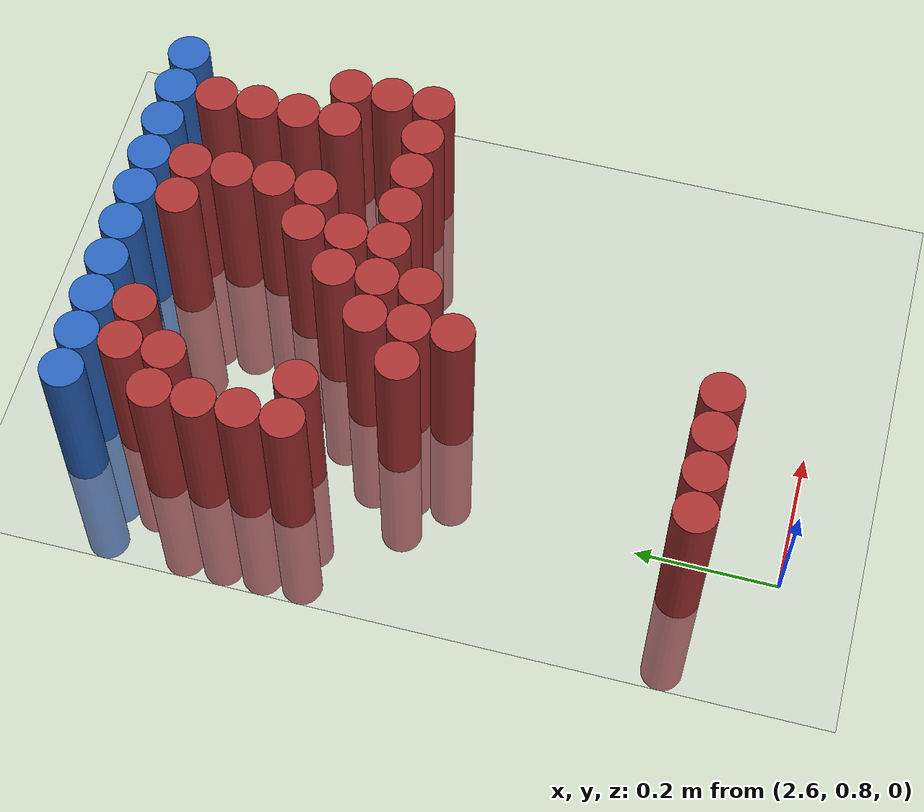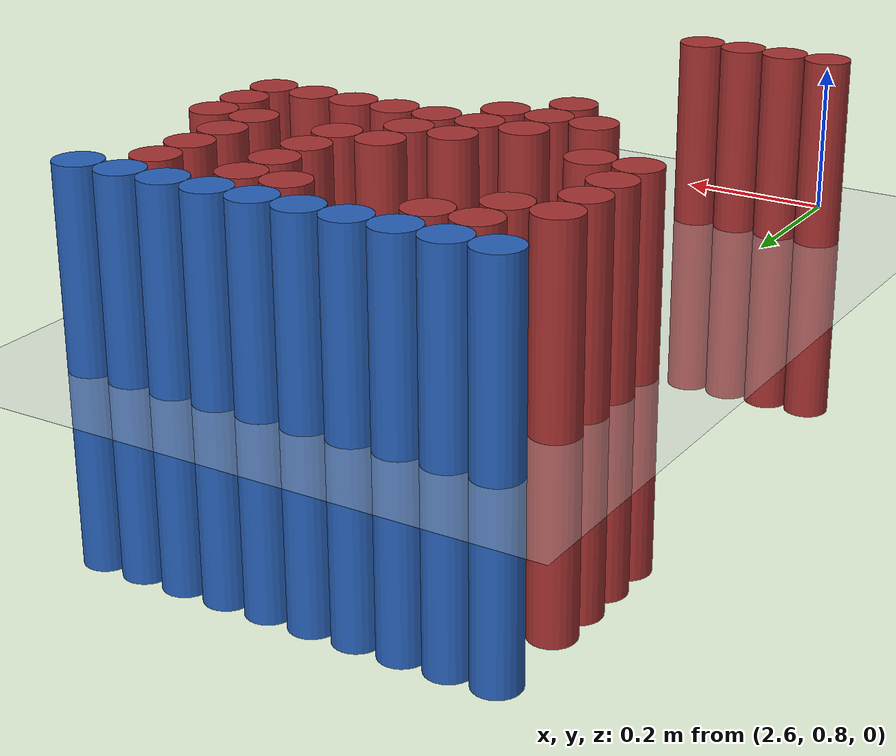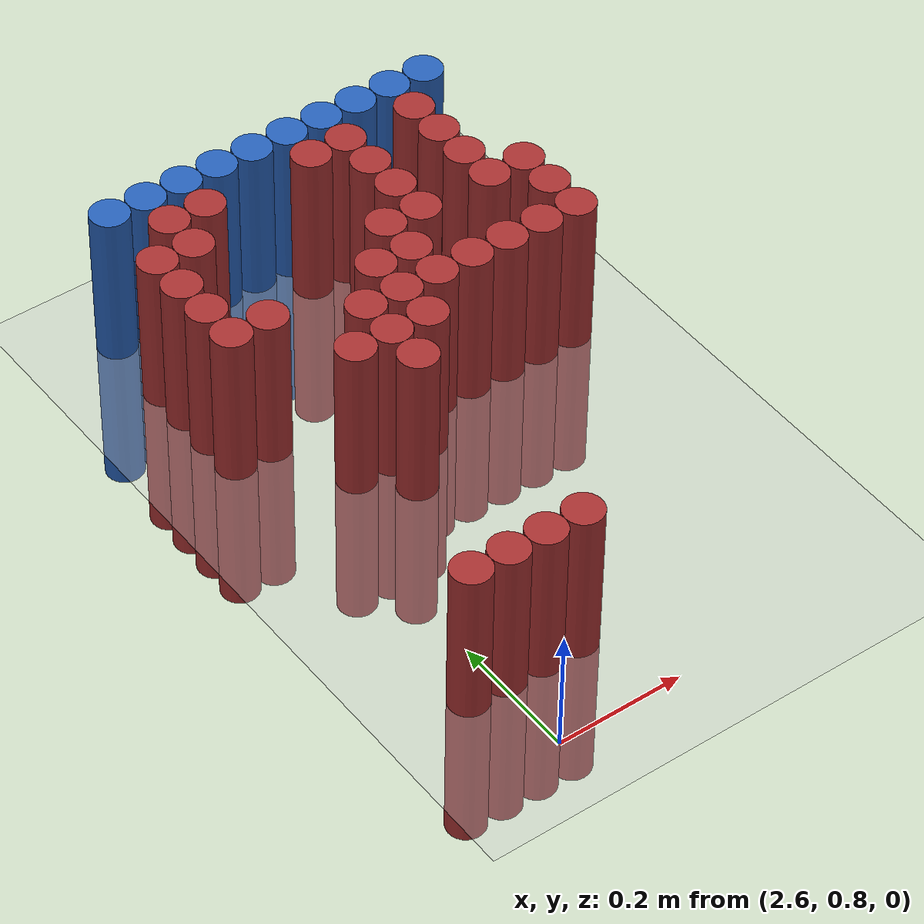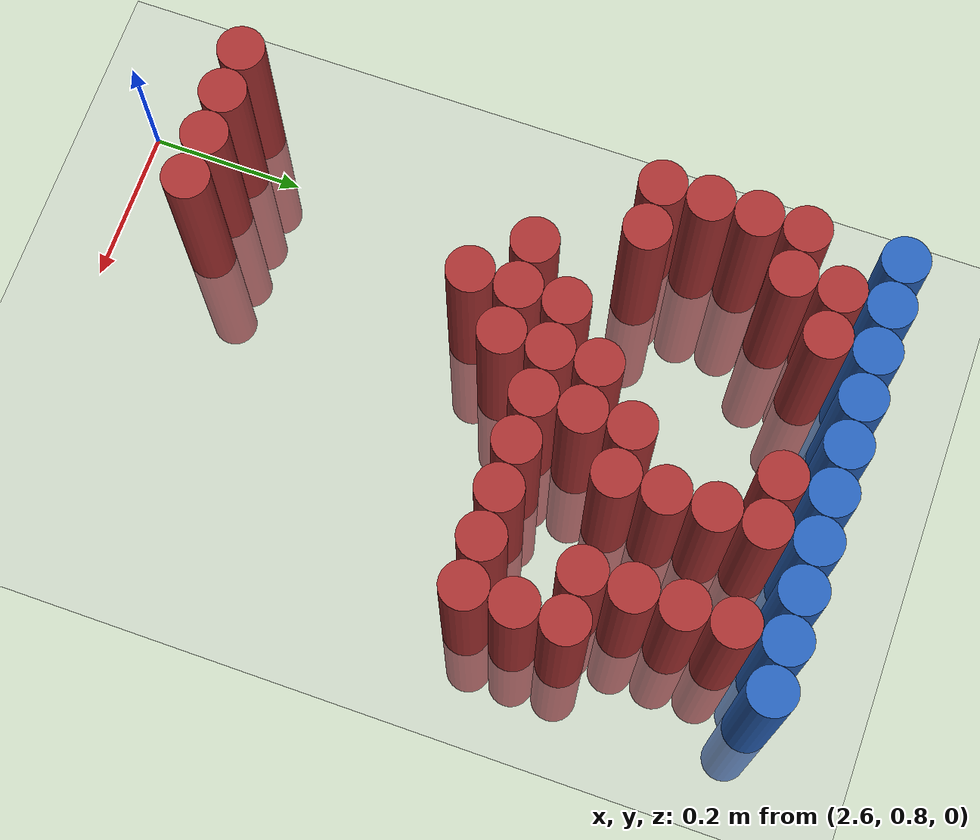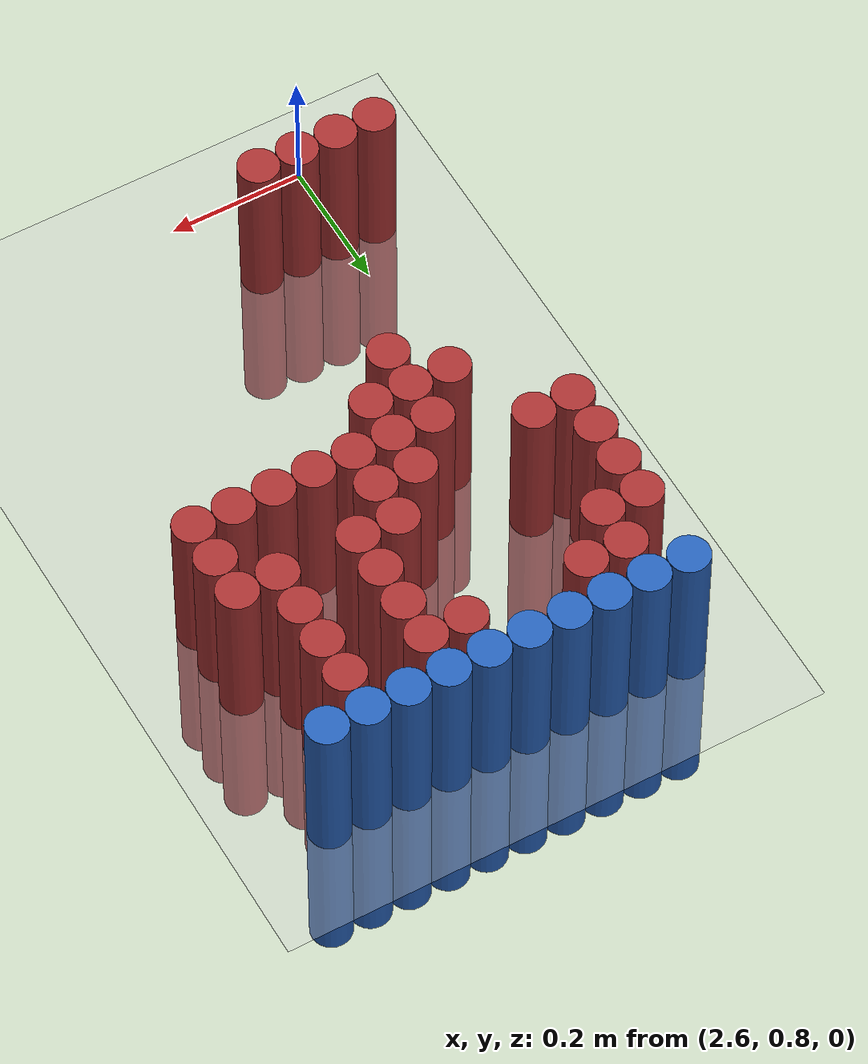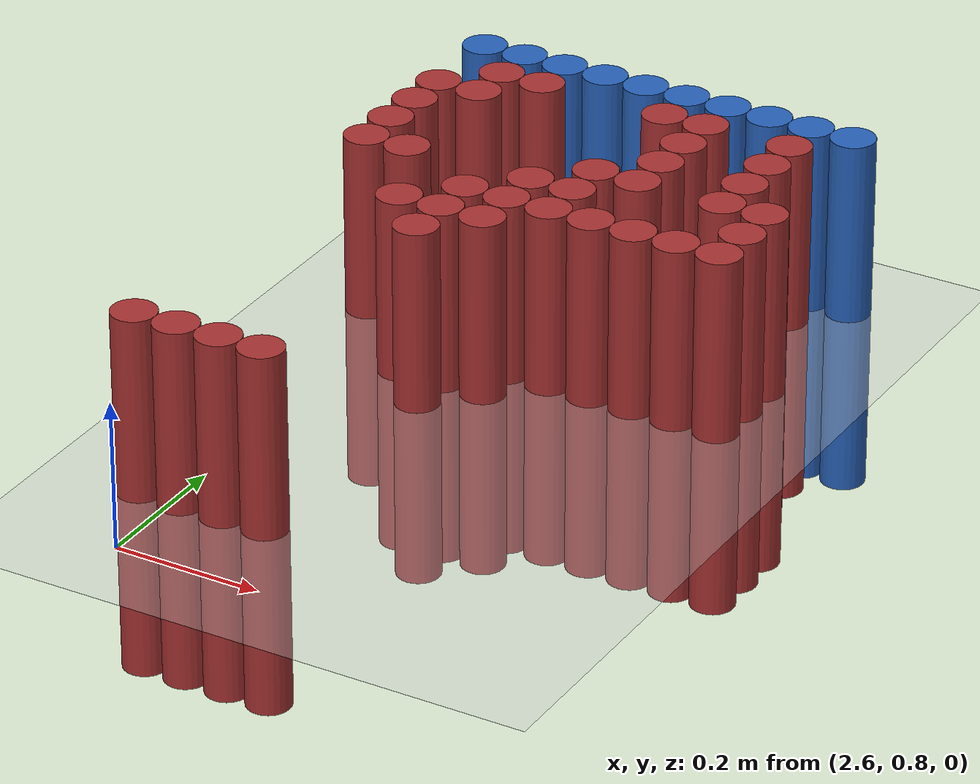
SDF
<sdf version="1.6">
 <world name="default">
  <model name="ground_plane">
   <static>1</static>
   <link name="link">
    <collision name="collision">
     <geometry><plane><normal>0 0 1</normal><size>100 100</size></plane></geometry>
     <surface><friction><ode><mu>100</mu><mu2>50</mu2></ode></friction></surface>
    </collision>
    <visual name="visual">
     <cast_shadows>0</cast_shadows>
     <geometry><plane><normal>0 0 1</normal><size>100 100</size></plane></geometry>
     <material>
      <script><uri>file://media/materials/scripts/gazebo.material</uri><name>Gazebo/Grey</name></script>
     </material>
    </visual>
   </link>
  </model>
  <model name="unit_cylinder_103">
   <static>1</static>
   <pose>2.550000 1.770000 0.000000 0.000000 0.000000 0.000000</pose>
   <link name="link">
    <inertial>
     <mass>1</mass>
     <inertia><ixx>0.145833</ixx><ixy>0</ixy><ixz>0</ixz><iyy>0.145833</iyy><iyz>0</iyz><izz>0.125</izz></inertia>
    </inertial>
    <collision name="collision">
     <geometry><cylinder><radius>0.030000</radius><length>0.5</length></cylinder></geometry>
    </collision>
    <visual name="visual">
     <geometry><cylinder><radius>0.030000</radius><length>0.5</length></cylinder></geometry>
     <material>
      <ambient>0.152000 0.379000 0.720000 1</ambient>
      <diffuse>0.152000 0.379000 0.720000 1</diffuse>
     </material>
     <material>
      <script><name>Gazebo/Grey</name><uri>file://media/materials/scripts/gazebo.material</uri></script>
     </material>
    </visual>
   </link>
  </model>
  <model name="unit_cylinder_104">
   <static>1</static>
   <pose>2.610000 1.770000 0.000000 0.000000 0.000000 0.000000</pose>
   <link name="link">
    <inertial>
     <mass>1</mass>
     <inertia><ixx>0.145833</ixx><ixy>0</ixy><ixz>0</ixz><iyy>0.145833</iyy><iyz>0</iyz><izz>0.125</izz></inertia>
    </inertial>
    <collision name="collision">
     <geometry><cylinder><radius>0.030000</radius><length>0.5</length></cylinder></geometry>
    </collision>
    <visual name="visual">
     <geometry><cylinder><radius>0.030000</radius><length>0.5</length></cylinder></geometry>
     <material>
      <ambient>0.152000 0.379000 0.720000 1</ambient>
      <diffuse>0.152000 0.379000 0.720000 1</diffuse>
     </material>
     <material>
      <script><name>Gazebo/Grey</name><uri>file://media/materials/scripts/gazebo.material</uri></script>
     </material>
    </visual>
   </link>
  </model>
  <model name="unit_cylinder_105">
   <static>1</static>
   <pose>2.670000 1.770000 0.000000 0.000000 0.000000 0.000000</pose>
   <link name="link">
    <inertial>
     <mass>1</mass>
     <inertia><ixx>0.145833</ixx><ixy>0</ixy><ixz>0</ixz><iyy>0.145833</iyy><iyz>0</iyz><izz>0.125</izz></inertia>
    </inertial>
    <collision name="collision">
     <geometry><cylinder><radius>0.030000</radius><length>0.5</length></cylinder></geometry>
    </collision>
    <visual name="visual">
     <geometry><cylinder><radius>0.030000</radius><length>0.5</length></cylinder></geometry>
     <material>
      <ambient>0.152000 0.379000 0.720000 1</ambient>
      <diffuse>0.152000 0.379000 0.720000 1</diffuse>
     </material>
     <material>
      <script><name>Gazebo/Grey</name><uri>file://media/materials/scripts/gazebo.material</uri></script>
     </material>
    </visual>
   </link>
  </model>
  <model name="unit_cylinder_106">
   <static>1</static>
   <pose>2.730000 1.770000 0.000000 0.000000 0.000000 0.000000</pose>
   <link name="link">
    <inertial>
     <mass>1</mass>
     <inertia><ixx>0.145833</ixx><ixy>0</ixy><ixz>0</ixz><iyy>0.145833</iyy><iyz>0</iyz><izz>0.125</izz></inertia>
    </inertial>
    <collision name="collision">
     <geometry><cylinder><radius>0.030000</radius><length>0.5</length></cylinder></geometry>
    </collision>
    <visual name="visual">
     <geometry><cylinder><radius>0.030000</radius><length>0.5</length></cylinder></geometry>
     <material>
      <ambient>0.152000 0.379000 0.720000 1</ambient>
      <diffuse>0.152000 0.379000 0.720000 1</diffuse>
     </material>
     <material>
      <script><name>Gazebo/Grey</name><uri>file://media/materials/scripts/gazebo.material</uri></script>
     </material>
    </visual>
   </link>
  </model>
  <model name="unit_cylinder_107">
   <static>1</static>
   <pose>2.790000 1.770000 0.000000 0.000000 0.000000 0.000000</pose>
   <link name="link">
    <inertial>
     <mass>1</mass>
     <inertia><ixx>0.145833</ixx><ixy>0</ixy><ixz>0</ixz><iyy>0.145833</iyy><iyz>0</iyz><izz>0.125</izz></inertia>
    </inertial>
    <collision name="collision">
     <geometry><cylinder><radius>0.030000</radius><length>0.5</length></cylinder></geometry>
    </collision>
    <visual name="visual">
     <geometry><cylinder><radius>0.030000</radius><length>0.5</length></cylinder></geometry>
     <material>
      <ambient>0.152000 0.379000 0.720000 1</ambient>
      <diffuse>0.152000 0.379000 0.720000 1</diffuse>
     </material>
     <material>
      <script><name>Gazebo/Grey</name><uri>file://media/materials/scripts/gazebo.material</uri></script>
     </material>
    </visual>
   </link>
  </model>
  <model name="unit_cylinder_108">
   <static>1</static>
   <pose>2.850000 1.770000 0.000000 0.000000 0.000000 0.000000</pose>
   <link name="link">
    <inertial>
     <mass>1</mass>
     <inertia><ixx>0.145833</ixx><ixy>0</ixy><ixz>0</ixz><iyy>0.145833</iyy><iyz>0</iyz><izz>0.125</izz></inertia>
    </inertial>
    <collision name="collision">
     <geometry><cylinder><radius>0.030000</radius><length>0.5</length></cylinder></geometry>
    </collision>
    <visual name="visual">
     <geometry><cylinder><radius>0.030000</radius><length>0.5</length></cylinder></geometry>
     <material>
      <ambient>0.152000 0.379000 0.720000 1</ambient>
      <diffuse>0.152000 0.379000 0.720000 1</diffuse>
     </material>
     <material>
      <script><name>Gazebo/Grey</name><uri>file://media/materials/scripts/gazebo.material</uri></script>
     </material>
    </visual>
   </link>
  </model>
  <model name="unit_cylinder_109">
   <static>1</static>
   <pose>2.910000 1.770000 0.000000 0.000000 0.000000 0.000000</pose>
   <link name="link">
    <inertial>
     <mass>1</mass>
     <inertia><ixx>0.145833</ixx><ixy>0</ixy><ixz>0</ixz><iyy>0.145833</iyy><iyz>0</iyz><izz>0.125</izz></inertia>
    </inertial>
    <collision name="collision">
     <geometry><cylinder><radius>0.030000</radius><length>0.5</length></cylinder></geometry>
    </collision>
    <visual name="visual">
     <geometry><cylinder><radius>0.030000</radius><length>0.5</length></cylinder></geometry>
     <material>
      <ambient>0.152000 0.379000 0.720000 1</ambient>
      <diffuse>0.152000 0.379000 0.720000 1</diffuse>
     </material>
     <material>
      <script><name>Gazebo/Grey</name><uri>file://media/materials/scripts/gazebo.material</uri></script>
     </material>
    </visual>
   </link>
  </model>
  <model name="unit_cylinder_110">
   <static>1</static>
   <pose>2.970000 1.770000 0.000000 0.000000 0.000000 0.000000</pose>
   <link name="link">
    <inertial>
     <mass>1</mass>
     <inertia><ixx>0.145833</ixx><ixy>0</ixy><ixz>0</ixz><iyy>0.145833</iyy><iyz>0</iyz><izz>0.125</izz></inertia>
    </inertial>
    <collision name="collision">
     <geometry><cylinder><radius>0.030000</radius><length>0.5</length></cylinder></geometry>
    </collision>
    <visual name="visual">
     <geometry><cylinder><radius>0.030000</radius><length>0.5</length></cylinder></geometry>
     <material>
      <ambient>0.152000 0.379000 0.720000 1</ambient>
      <diffuse>0.152000 0.379000 0.720000 1</diffuse>
     </material>
     <material>
      <script><name>Gazebo/Grey</name><uri>file://media/materials/scripts/gazebo.material</uri></script>
     </material>
    </visual>
   </link>
  </model>
  <model name="unit_cylinder_111">
   <static>1</static>
   <pose>3.030000 1.770000 0.000000 0.000000 0.000000 0.000000</pose>
   <link name="link">
    <inertial>
     <mass>1</mass>
     <inertia><ixx>0.145833</ixx><ixy>0</ixy><ixz>0</ixz><iyy>0.145833</iyy><iyz>0</iyz><izz>0.125</izz></inertia>
    </inertial>
    <collision name="collision">
     <geometry><cylinder><radius>0.030000</radius><length>0.5</length></cylinder></geometry>
    </collision>
    <visual name="visual">
     <geometry><cylinder><radius>0.030000</radius><length>0.5</length></cylinder></geometry>
     <material>
      <ambient>0.152000 0.379000 0.720000 1</ambient>
      <diffuse>0.152000 0.379000 0.720000 1</diffuse>
     </material>
     <material>
      <script><name>Gazebo/Grey</name><uri>file://media/materials/scripts/gazebo.material</uri></script>
     </material>
    </visual>
   </link>
  </model>
  <model name="unit_cylinder_112">
   <static>1</static>
   <pose>3.090000 1.770000 0.000000 0.000000 0.000000 0.000000</pose>
   <link name="link">
    <inertial>
     <mass>1</mass>
     <inertia><ixx>0.145833</ixx><ixy>0</ixy><ixz>0</ixz><iyy>0.145833</iyy><iyz>0</iyz><izz>0.125</izz></inertia>
    </inertial>
    <collision name="collision">
     <geometry><cylinder><radius>0.030000</radius><length>0.5</length></cylinder></geometry>
    </collision>
    <visual name="visual">
     <geometry><cylinder><radius>0.030000</radius><length>0.5</length></cylinder></geometry>
     <material>
      <ambient>0.152000 0.379000 0.720000 1</ambient>
      <diffuse>0.152000 0.379000 0.720000 1</diffuse>
     </material>
     <material>
      <script><name>Gazebo/Grey</name><uri>file://media/materials/scripts/gazebo.material</uri></script>
     </material>
    </visual>
   </link>
  </model>
  <model name="unit_cylinder_128">
   <static>1</static>
   <pose>2.610000 1.710000 0.000000 0.000000 0.000000 0.000000</pose>
   <link name="link">
    <inertial>
     <mass>1</mass>
     <inertia><ixx>0.145833</ixx><ixy>0</ixy><ixz>0</ixz><iyy>0.145833</iyy><iyz>0</iyz><izz>0.125</izz></inertia>
    </inertial>
    <collision name="collision">
     <geometry><cylinder><radius>0.030000</radius><length>0.5</length></cylinder></geometry>
    </collision>
    <visual name="visual">
     <geometry><cylinder><radius>0.030000</radius><length>0.5</length></cylinder></geometry>
     <material>
      <ambient>0.648000 0.192000 0.192000 1</ambient>
      <diffuse>0.648000 0.192000 0.192000 1</diffuse>
     </material>
     <material>
      <script><name>Gazebo/Grey</name><uri>file://media/materials/scripts/gazebo.material</uri></script>
     </material>
    </visual>
   </link>
  </model>
  <model name="unit_cylinder_129">
   <static>1</static>
   <pose>2.670000 1.710000 0.000000 0.000000 0.000000 0.000000</pose>
   <link name="link">
    <inertial>
     <mass>1</mass>
     <inertia><ixx>0.145833</ixx><ixy>0</ixy><ixz>0</ixz><iyy>0.145833</iyy><iyz>0</iyz><izz>0.125</izz></inertia>
    </inertial>
    <collision name="collision">
     <geometry><cylinder><radius>0.030000</radius><length>0.5</length></cylinder></geometry>
    </collision>
    <visual name="visual">
     <geometry><cylinder><radius>0.030000</radius><length>0.5</length></cylinder></geometry>
     <material>
      <ambient>0.648000 0.192000 0.192000 1</ambient>
      <diffuse>0.648000 0.192000 0.192000 1</diffuse>
     </material>
     <material>
      <script><name>Gazebo/Grey</name><uri>file://media/materials/scripts/gazebo.material</uri></script>
     </material>
    </visual>
   </link>
  </model>
  <model name="unit_cylinder_130">
   <static>1</static>
   <pose>2.850000 1.710000 0.000000 0.000000 0.000000 0.000000</pose>
   <link name="link">
    <inertial>
     <mass>1</mass>
     <inertia><ixx>0.145833</ixx><ixy>0</ixy><ixz>0</ixz><iyy>0.145833</iyy><iyz>0</iyz><izz>0.125</izz></inertia>
    </inertial>
    <collision name="collision">
     <geometry><cylinder><radius>0.030000</radius><length>0.5</length></cylinder></geometry>
    </collision>
    <visual name="visual">
     <geometry><cylinder><radius>0.030000</radius><length>0.5</length></cylinder></geometry>
     <material>
      <ambient>0.648000 0.192000 0.192000 1</ambient>
      <diffuse>0.648000 0.192000 0.192000 1</diffuse>
     </material>
     <material>
      <script><name>Gazebo/Grey</name><uri>file://media/materials/scripts/gazebo.material</uri></script>
     </material>
    </visual>
   </link>
  </model>
  <model name="unit_cylinder_131">
   <static>1</static>
   <pose>2.910000 1.710000 0.000000 0.000000 0.000000 0.000000</pose>
   <link name="link">
    <inertial>
     <mass>1</mass>
     <inertia><ixx>0.145833</ixx><ixy>0</ixy><ixz>0</ixz><iyy>0.145833</iyy><iyz>0</iyz><izz>0.125</izz></inertia>
    </inertial>
    <collision name="collision">
     <geometry><cylinder><radius>0.030000</radius><length>0.5</length></cylinder></geometry>
    </collision>
    <visual name="visual">
     <geometry><cylinder><radius>0.030000</radius><length>0.5</length></cylinder></geometry>
     <material>
      <ambient>0.648000 0.192000 0.192000 1</ambient>
      <diffuse>0.648000 0.192000 0.192000 1</diffuse>
     </material>
     <material>
      <script><name>Gazebo/Grey</name><uri>file://media/materials/scripts/gazebo.material</uri></script>
     </material>
    </visual>
   </link>
  </model>
  <model name="unit_cylinder_132">
   <static>1</static>
   <pose>3.030000 1.710000 0.000000 0.000000 0.000000 0.000000</pose>
   <link name="link">
    <inertial>
     <mass>1</mass>
     <inertia><ixx>0.145833</ixx><ixy>0</ixy><ixz>0</ixz><iyy>0.145833</iyy><iyz>0</iyz><izz>0.125</izz></inertia>
    </inertial>
    <collision name="collision">
     <geometry><cylinder><radius>0.030000</radius><length>0.5</length></cylinder></geometry>
    </collision>
    <visual name="visual">
     <geometry><cylinder><radius>0.030000</radius><length>0.5</length></cylinder></geometry>
     <material>
      <ambient>0.648000 0.192000 0.192000 1</ambient>
      <diffuse>0.648000 0.192000 0.192000 1</diffuse>
     </material>
     <material>
      <script><name>Gazebo/Grey</name><uri>file://media/materials/scripts/gazebo.material</uri></script>
     </material>
    </visual>
   </link>
  </model>
  <model name="unit_cylinder_137">
   <static>1</static>
   <pose>2.550000 1.650000 0.000000 0.000000 0.000000 0.000000</pose>
   <link name="link">
    <inertial>
     <mass>1</mass>
     <inertia><ixx>0.145833</ixx><ixy>0</ixy><ixz>0</ixz><iyy>0.145833</iyy><iyz>0</iyz><izz>0.125</izz></inertia>
    </inertial>
    <collision name="collision">
     <geometry><cylinder><radius>0.030000</radius><length>0.5</length></cylinder></geometry>
    </collision>
    <visual name="visual">
     <geometry><cylinder><radius>0.030000</radius><length>0.5</length></cylinder></geometry>
     <material>
      <ambient>0.648000 0.192000 0.192000 1</ambient>
      <diffuse>0.648000 0.192000 0.192000 1</diffuse>
     </material>
     <material>
      <script><name>Gazebo/Grey</name><uri>file://media/materials/scripts/gazebo.material</uri></script>
     </material>
    </visual>
   </link>
  </model>
  <model name="unit_cylinder_138">
   <static>1</static>
   <pose>2.610000 1.650000 0.000000 0.000000 0.000000 0.000000</pose>
   <link name="link">
    <inertial>
     <mass>1</mass>
     <inertia><ixx>0.145833</ixx><ixy>0</ixy><ixz>0</ixz><iyy>0.145833</iyy><iyz>0</iyz><izz>0.125</izz></inertia>
    </inertial>
    <collision name="collision">
     <geometry><cylinder><radius>0.030000</radius><length>0.5</length></cylinder></geometry>
    </collision>
    <visual name="visual">
     <geometry><cylinder><radius>0.030000</radius><length>0.5</length></cylinder></geometry>
     <material>
      <ambient>0.648000 0.192000 0.192000 1</ambient>
      <diffuse>0.648000 0.192000 0.192000 1</diffuse>
     </material>
     <material>
      <script><name>Gazebo/Grey</name><uri>file://media/materials/scripts/gazebo.material</uri></script>
     </material>
    </visual>
   </link>
  </model>
  <model name="unit_cylinder_139">
   <static>1</static>
   <pose>2.910000 1.650000 0.000000 0.000000 0.000000 0.000000</pose>
   <link name="link">
    <inertial>
     <mass>1</mass>
     <inertia><ixx>0.145833</ixx><ixy>0</ixy><ixz>0</ixz><iyy>0.145833</iyy><iyz>0</iyz><izz>0.125</izz></inertia>
    </inertial>
    <collision name="collision">
     <geometry><cylinder><radius>0.030000</radius><length>0.5</length></cylinder></geometry>
    </collision>
    <visual name="visual">
     <geometry><cylinder><radius>0.030000</radius><length>0.5</length></cylinder></geometry>
     <material>
      <ambient>0.648000 0.192000 0.192000 1</ambient>
      <diffuse>0.648000 0.192000 0.192000 1</diffuse>
     </material>
     <material>
      <script><name>Gazebo/Grey</name><uri>file://media/materials/scripts/gazebo.material</uri></script>
     </material>
    </visual>
   </link>
  </model>
  <model name="unit_cylinder_140">
   <static>1</static>
   <pose>3.030000 1.650000 0.000000 0.000000 0.000000 0.000000</pose>
   <link name="link">
    <inertial>
     <mass>1</mass>
     <inertia><ixx>0.145833</ixx><ixy>0</ixy><ixz>0</ixz><iyy>0.145833</iyy><iyz>0</iyz><izz>0.125</izz></inertia>
    </inertial>
    <collision name="collision">
     <geometry><cylinder><radius>0.030000</radius><length>0.5</length></cylinder></geometry>
    </collision>
    <visual name="visual">
     <geometry><cylinder><radius>0.030000</radius><length>0.5</length></cylinder></geometry>
     <material>
      <ambient>0.648000 0.192000 0.192000 1</ambient>
      <diffuse>0.648000 0.192000 0.192000 1</diffuse>
     </material>
     <material>
      <script><name>Gazebo/Grey</name><uri>file://media/materials/scripts/gazebo.material</uri></script>
     </material>
    </visual>
   </link>
  </model>
  <model name="unit_cylinder_145">
   <static>1</static>
   <pose>2.550000 1.590000 0.000000 0.000000 0.000000 0.000000</pose>
   <link name="link">
    <inertial>
     <mass>1</mass>
     <inertia><ixx>0.145833</ixx><ixy>0</ixy><ixz>0</ixz><iyy>0.145833</iyy><iyz>0</iyz><izz>0.125</izz></inertia>
    </inertial>
    <collision name="collision">
     <geometry><cylinder><radius>0.030000</radius><length>0.5</length></cylinder></geometry>
    </collision>
    <visual name="visual">
     <geometry><cylinder><radius>0.030000</radius><length>0.5</length></cylinder></geometry>
     <material>
      <ambient>0.648000 0.192000 0.192000 1</ambient>
      <diffuse>0.648000 0.192000 0.192000 1</diffuse>
     </material>
     <material>
      <script><name>Gazebo/Grey</name><uri>file://media/materials/scripts/gazebo.material</uri></script>
     </material>
    </visual>
   </link>
  </model>
  <model name="unit_cylinder_146">
   <static>1</static>
   <pose>2.910000 1.590000 0.000000 0.000000 0.000000 0.000000</pose>
   <link name="link">
    <inertial>
     <mass>1</mass>
     <inertia><ixx>0.145833</ixx><ixy>0</ixy><ixz>0</ixz><iyy>0.145833</iyy><iyz>0</iyz><izz>0.125</izz></inertia>
    </inertial>
    <collision name="collision">
     <geometry><cylinder><radius>0.030000</radius><length>0.5</length></cylinder></geometry>
    </collision>
    <visual name="visual">
     <geometry><cylinder><radius>0.030000</radius><length>0.5</length></cylinder></geometry>
     <material>
      <ambient>0.648000 0.192000 0.192000 1</ambient>
      <diffuse>0.648000 0.192000 0.192000 1</diffuse>
     </material>
     <material>
      <script><name>Gazebo/Grey</name><uri>file://media/materials/scripts/gazebo.material</uri></script>
     </material>
    </visual>
   </link>
  </model>
  <model name="unit_cylinder_147">
   <static>1</static>
   <pose>3.030000 1.590000 0.000000 0.000000 0.000000 0.000000</pose>
   <link name="link">
    <inertial>
     <mass>1</mass>
     <inertia><ixx>0.145833</ixx><ixy>0</ixy><ixz>0</ixz><iyy>0.145833</iyy><iyz>0</iyz><izz>0.125</izz></inertia>
    </inertial>
    <collision name="collision">
     <geometry><cylinder><radius>0.030000</radius><length>0.5</length></cylinder></geometry>
    </collision>
    <visual name="visual">
     <geometry><cylinder><radius>0.030000</radius><length>0.5</length></cylinder></geometry>
     <material>
      <ambient>0.648000 0.192000 0.192000 1</ambient>
      <diffuse>0.648000 0.192000 0.192000 1</diffuse>
     </material>
     <material>
      <script><name>Gazebo/Grey</name><uri>file://media/materials/scripts/gazebo.material</uri></script>
     </material>
    </visual>
   </link>
  </model>
  <model name="unit_cylinder_150">
   <static>1</static>
   <pose>2.550000 1.530000 0.000000 0.000000 0.000000 0.000000</pose>
   <link name="link">
    <inertial>
     <mass>1</mass>
     <inertia><ixx>0.145833</ixx><ixy>0</ixy><ixz>0</ixz><iyy>0.145833</iyy><iyz>0</iyz><izz>0.125</izz></inertia>
    </inertial>
    <collision name="collision">
     <geometry><cylinder><radius>0.030000</radius><length>0.5</length></cylinder></geometry>
    </collision>
    <visual name="visual">
     <geometry><cylinder><radius>0.030000</radius><length>0.5</length></cylinder></geometry>
     <material>
      <ambient>0.648000 0.192000 0.192000 1</ambient>
      <diffuse>0.648000 0.192000 0.192000 1</diffuse>
     </material>
     <material>
      <script><name>Gazebo/Grey</name><uri>file://media/materials/scripts/gazebo.material</uri></script>
     </material>
    </visual>
   </link>
  </model>
  <model name="unit_cylinder_151">
   <static>1</static>
   <pose>2.850000 1.530000 0.000000 0.000000 0.000000 0.000000</pose>
   <link name="link">
    <inertial>
     <mass>1</mass>
     <inertia><ixx>0.145833</ixx><ixy>0</ixy><ixz>0</ixz><iyy>0.145833</iyy><iyz>0</iyz><izz>0.125</izz></inertia>
    </inertial>
    <collision name="collision">
     <geometry><cylinder><radius>0.030000</radius><length>0.5</length></cylinder></geometry>
    </collision>
    <visual name="visual">
     <geometry><cylinder><radius>0.030000</radius><length>0.5</length></cylinder></geometry>
     <material>
      <ambient>0.648000 0.192000 0.192000 1</ambient>
      <diffuse>0.648000 0.192000 0.192000 1</diffuse>
     </material>
     <material>
      <script><name>Gazebo/Grey</name><uri>file://media/materials/scripts/gazebo.material</uri></script>
     </material>
    </visual>
   </link>
  </model>
  <model name="unit_cylinder_152">
   <static>1</static>
   <pose>2.910000 1.530000 0.000000 0.000000 0.000000 0.000000</pose>
   <link name="link">
    <inertial>
     <mass>1</mass>
     <inertia><ixx>0.145833</ixx><ixy>0</ixy><ixz>0</ixz><iyy>0.145833</iyy><iyz>0</iyz><izz>0.125</izz></inertia>
    </inertial>
    <collision name="collision">
     <geometry><cylinder><radius>0.030000</radius><length>0.5</length></cylinder></geometry>
    </collision>
    <visual name="visual">
     <geometry><cylinder><radius>0.030000</radius><length>0.5</length></cylinder></geometry>
     <material>
      <ambient>0.648000 0.192000 0.192000 1</ambient>
      <diffuse>0.648000 0.192000 0.192000 1</diffuse>
     </material>
     <material>
      <script><name>Gazebo/Grey</name><uri>file://media/materials/scripts/gazebo.material</uri></script>
     </material>
    </visual>
   </link>
  </model>
  <model name="unit_cylinder_153">
   <static>1</static>
   <pose>3.030000 1.530000 0.000000 0.000000 0.000000 0.000000</pose>
   <link name="link">
    <inertial>
     <mass>1</mass>
     <inertia><ixx>0.145833</ixx><ixy>0</ixy><ixz>0</ixz><iyy>0.145833</iyy><iyz>0</iyz><izz>0.125</izz></inertia>
    </inertial>
    <collision name="collision">
     <geometry><cylinder><radius>0.030000</radius><length>0.5</length></cylinder></geometry>
    </collision>
    <visual name="visual">
     <geometry><cylinder><radius>0.030000</radius><length>0.5</length></cylinder></geometry>
     <material>
      <ambient>0.648000 0.192000 0.192000 1</ambient>
      <diffuse>0.648000 0.192000 0.192000 1</diffuse>
     </material>
     <material>
      <script><name>Gazebo/Grey</name><uri>file://media/materials/scripts/gazebo.material</uri></script>
     </material>
    </visual>
   </link>
  </model>
  <model name="unit_cylinder_154">
   <static>1</static>
   <pose>3.090000 1.530000 0.000000 0.000000 0.000000 0.000000</pose>
   <link name="link">
    <inertial>
     <mass>1</mass>
     <inertia><ixx>0.145833</ixx><ixy>0</ixy><ixz>0</ixz><iyy>0.145833</iyy><iyz>0</iyz><izz>0.125</izz></inertia>
    </inertial>
    <collision name="collision">
     <geometry><cylinder><radius>0.030000</radius><length>0.5</length></cylinder></geometry>
    </collision>
    <visual name="visual">
     <geometry><cylinder><radius>0.030000</radius><length>0.5</length></cylinder></geometry>
     <material>
      <ambient>0.648000 0.192000 0.192000 1</ambient>
      <diffuse>0.648000 0.192000 0.192000 1</diffuse>
     </material>
     <material>
      <script><name>Gazebo/Grey</name><uri>file://media/materials/scripts/gazebo.material</uri></script>
     </material>
    </visual>
   </link>
  </model>
  <model name="unit_cylinder_164">
   <static>1</static>
   <pose>2.550000 1.470000 0.000000 0.000000 0.000000 0.000000</pose>
   <link name="link">
    <inertial>
     <mass>1</mass>
     <inertia><ixx>0.145833</ixx><ixy>0</ixy><ixz>0</ixz><iyy>0.145833</iyy><iyz>0</iyz><izz>0.125</izz></inertia>
    </inertial>
    <collision name="collision">
     <geometry><cylinder><radius>0.030000</radius><length>0.5</length></cylinder></geometry>
    </collision>
    <visual name="visual">
     <geometry><cylinder><radius>0.030000</radius><length>0.5</length></cylinder></geometry>
     <material>
      <ambient>0.648000 0.192000 0.192000 1</ambient>
      <diffuse>0.648000 0.192000 0.192000 1</diffuse>
     </material>
     <material>
      <script><name>Gazebo/Grey</name><uri>file://media/materials/scripts/gazebo.material</uri></script>
     </material>
    </visual>
   </link>
  </model>
  <model name="unit_cylinder_165">
   <static>1</static>
   <pose>2.610000 1.470000 0.000000 0.000000 0.000000 0.000000</pose>
   <link name="link">
    <inertial>
     <mass>1</mass>
     <inertia><ixx>0.145833</ixx><ixy>0</ixy><ixz>0</ixz><iyy>0.145833</iyy><iyz>0</iyz><izz>0.125</izz></inertia>
    </inertial>
    <collision name="collision">
     <geometry><cylinder><radius>0.030000</radius><length>0.5</length></cylinder></geometry>
    </collision>
    <visual name="visual">
     <geometry><cylinder><radius>0.030000</radius><length>0.5</length></cylinder></geometry>
     <material>
      <ambient>0.648000 0.192000 0.192000 1</ambient>
      <diffuse>0.648000 0.192000 0.192000 1</diffuse>
     </material>
     <material>
      <script><name>Gazebo/Grey</name><uri>file://media/materials/scripts/gazebo.material</uri></script>
     </material>
    </visual>
   </link>
  </model>
  <model name="unit_cylinder_166">
   <static>1</static>
   <pose>2.790000 1.470000 0.000000 0.000000 0.000000 0.000000</pose>
   <link name="link">
    <inertial>
     <mass>1</mass>
     <inertia><ixx>0.145833</ixx><ixy>0</ixy><ixz>0</ixz><iyy>0.145833</iyy><iyz>0</iyz><izz>0.125</izz></inertia>
    </inertial>
    <collision name="collision">
     <geometry><cylinder><radius>0.030000</radius><length>0.5</length></cylinder></geometry>
    </collision>
    <visual name="visual">
     <geometry><cylinder><radius>0.030000</radius><length>0.5</length></cylinder></geometry>
     <material>
      <ambient>0.648000 0.192000 0.192000 1</ambient>
      <diffuse>0.648000 0.192000 0.192000 1</diffuse>
     </material>
     <material>
      <script><name>Gazebo/Grey</name><uri>file://media/materials/scripts/gazebo.material</uri></script>
     </material>
    </visual>
   </link>
  </model>
  <model name="unit_cylinder_167">
   <static>1</static>
   <pose>2.850000 1.470000 0.000000 0.000000 0.000000 0.000000</pose>
   <link name="link">
    <inertial>
     <mass>1</mass>
     <inertia><ixx>0.145833</ixx><ixy>0</ixy><ixz>0</ixz><iyy>0.145833</iyy><iyz>0</iyz><izz>0.125</izz></inertia>
    </inertial>
    <collision name="collision">
     <geometry><cylinder><radius>0.030000</radius><length>0.5</length></cylinder></geometry>
    </collision>
    <visual name="visual">
     <geometry><cylinder><radius>0.030000</radius><length>0.5</length></cylinder></geometry>
     <material>
      <ambient>0.648000 0.192000 0.192000 1</ambient>
      <diffuse>0.648000 0.192000 0.192000 1</diffuse>
     </material>
     <material>
      <script><name>Gazebo/Grey</name><uri>file://media/materials/scripts/gazebo.material</uri></script>
     </material>
    </visual>
   </link>
  </model>
  <model name="unit_cylinder_168">
   <static>1</static>
   <pose>3.090000 1.470000 0.000000 0.000000 0.000000 0.000000</pose>
   <link name="link">
    <inertial>
     <mass>1</mass>
     <inertia><ixx>0.145833</ixx><ixy>0</ixy><ixz>0</ixz><iyy>0.145833</iyy><iyz>0</iyz><izz>0.125</izz></inertia>
    </inertial>
    <collision name="collision">
     <geometry><cylinder><radius>0.030000</radius><length>0.5</length></cylinder></geometry>
    </collision>
    <visual name="visual">
     <geometry><cylinder><radius>0.030000</radius><length>0.5</length></cylinder></geometry>
     <material>
      <ambient>0.648000 0.192000 0.192000 1</ambient>
      <diffuse>0.648000 0.192000 0.192000 1</diffuse>
     </material>
     <material>
      <script><name>Gazebo/Grey</name><uri>file://media/materials/scripts/gazebo.material</uri></script>
     </material>
    </visual>
   </link>
  </model>
  <model name="unit_cylinder_178">
   <static>1</static>
   <pose>2.730000 1.410000 0.000000 0.000000 0.000000 0.000000</pose>
   <link name="link">
    <inertial>
     <mass>1</mass>
     <inertia><ixx>0.145833</ixx><ixy>0</ixy><ixz>0</ixz><iyy>0.145833</iyy><iyz>0</iyz><izz>0.125</izz></inertia>
    </inertial>
    <collision name="collision">
     <geometry><cylinder><radius>0.030000</radius><length>0.5</length></cylinder></geometry>
    </collision>
    <visual name="visual">
     <geometry><cylinder><radius>0.030000</radius><length>0.5</length></cylinder></geometry>
     <material>
      <ambient>0.648000 0.192000 0.192000 1</ambient>
      <diffuse>0.648000 0.192000 0.192000 1</diffuse>
     </material>
     <material>
      <script><name>Gazebo/Grey</name><uri>file://media/materials/scripts/gazebo.material</uri></script>
     </material>
    </visual>
   </link>
  </model>
  <model name="unit_cylinder_179">
   <static>1</static>
   <pose>2.790000 1.410000 0.000000 0.000000 0.000000 0.000000</pose>
   <link name="link">
    <inertial>
     <mass>1</mass>
     <inertia><ixx>0.145833</ixx><ixy>0</ixy><ixz>0</ixz><iyy>0.145833</iyy><iyz>0</iyz><izz>0.125</izz></inertia>
    </inertial>
    <collision name="collision">
     <geometry><cylinder><radius>0.030000</radius><length>0.5</length></cylinder></geometry>
    </collision>
    <visual name="visual">
     <geometry><cylinder><radius>0.030000</radius><length>0.5</length></cylinder></geometry>
     <material>
      <ambient>0.648000 0.192000 0.192000 1</ambient>
      <diffuse>0.648000 0.192000 0.192000 1</diffuse>
     </material>
     <material>
      <script><name>Gazebo/Grey</name><uri>file://media/materials/scripts/gazebo.material</uri></script>
     </material>
    </visual>
   </link>
  </model>
  <model name="unit_cylinder_180">
   <static>1</static>
   <pose>2.850000 1.410000 0.000000 0.000000 0.000000 0.000000</pose>
   <link name="link">
    <inertial>
     <mass>1</mass>
     <inertia><ixx>0.145833</ixx><ixy>0</ixy><ixz>0</ixz><iyy>0.145833</iyy><iyz>0</iyz><izz>0.125</izz></inertia>
    </inertial>
    <collision name="collision">
     <geometry><cylinder><radius>0.030000</radius><length>0.5</length></cylinder></geometry>
    </collision>
    <visual name="visual">
     <geometry><cylinder><radius>0.030000</radius><length>0.5</length></cylinder></geometry>
     <material>
      <ambient>0.648000 0.192000 0.192000 1</ambient>
      <diffuse>0.648000 0.192000 0.192000 1</diffuse>
     </material>
     <material>
      <script><name>Gazebo/Grey</name><uri>file://media/materials/scripts/gazebo.material</uri></script>
     </material>
    </visual>
   </link>
  </model>
  <model name="unit_cylinder_181">
   <static>1</static>
   <pose>2.910000 1.410000 0.000000 0.000000 0.000000 0.000000</pose>
   <link name="link">
    <inertial>
     <mass>1</mass>
     <inertia><ixx>0.145833</ixx><ixy>0</ixy><ixz>0</ixz><iyy>0.145833</iyy><iyz>0</iyz><izz>0.125</izz></inertia>
    </inertial>
    <collision name="collision">
     <geometry><cylinder><radius>0.030000</radius><length>0.5</length></cylinder></geometry>
    </collision>
    <visual name="visual">
     <geometry><cylinder><radius>0.030000</radius><length>0.5</length></cylinder></geometry>
     <material>
      <ambient>0.648000 0.192000 0.192000 1</ambient>
      <diffuse>0.648000 0.192000 0.192000 1</diffuse>
     </material>
     <material>
      <script><name>Gazebo/Grey</name><uri>file://media/materials/scripts/gazebo.material</uri></script>
     </material>
    </visual>
   </link>
  </model>
  <model name="unit_cylinder_182">
   <static>1</static>
   <pose>2.970000 1.410000 0.000000 0.000000 0.000000 0.000000</pose>
   <link name="link">
    <inertial>
     <mass>1</mass>
     <inertia><ixx>0.145833</ixx><ixy>0</ixy><ixz>0</ixz><iyy>0.145833</iyy><iyz>0</iyz><izz>0.125</izz></inertia>
    </inertial>
    <collision name="collision">
     <geometry><cylinder><radius>0.030000</radius><length>0.5</length></cylinder></geometry>
    </collision>
    <visual name="visual">
     <geometry><cylinder><radius>0.030000</radius><length>0.5</length></cylinder></geometry>
     <material>
      <ambient>0.648000 0.192000 0.192000 1</ambient>
      <diffuse>0.648000 0.192000 0.192000 1</diffuse>
     </material>
     <material>
      <script><name>Gazebo/Grey</name><uri>file://media/materials/scripts/gazebo.material</uri></script>
     </material>
    </visual>
   </link>
  </model>
  <model name="unit_cylinder_183">
   <static>1</static>
   <pose>3.030000 1.410000 0.000000 0.000000 0.000000 0.000000</pose>
   <link name="link">
    <inertial>
     <mass>1</mass>
     <inertia><ixx>0.145833</ixx><ixy>0</ixy><ixz>0</ixz><iyy>0.145833</iyy><iyz>0</iyz><izz>0.125</izz></inertia>
    </inertial>
    <collision name="collision">
     <geometry><cylinder><radius>0.030000</radius><length>0.5</length></cylinder></geometry>
    </collision>
    <visual name="visual">
     <geometry><cylinder><radius>0.030000</radius><length>0.5</length></cylinder></geometry>
     <material>
      <ambient>0.648000 0.192000 0.192000 1</ambient>
      <diffuse>0.648000 0.192000 0.192000 1</diffuse>
     </material>
     <material>
      <script><name>Gazebo/Grey</name><uri>file://media/materials/scripts/gazebo.material</uri></script>
     </material>
    </visual>
   </link>
  </model>
  <model name="unit_cylinder_184">
   <static>1</static>
   <pose>3.090000 1.410000 0.000000 0.000000 0.000000 0.000000</pose>
   <link name="link">
    <inertial>
     <mass>1</mass>
     <inertia><ixx>0.145833</ixx><ixy>0</ixy><ixz>0</ixz><iyy>0.145833</iyy><iyz>0</iyz><izz>0.125</izz></inertia>
    </inertial>
    <collision name="collision">
     <geometry><cylinder><radius>0.030000</radius><length>0.5</length></cylinder></geometry>
    </collision>
    <visual name="visual">
     <geometry><cylinder><radius>0.030000</radius><length>0.5</length></cylinder></geometry>
     <material>
      <ambient>0.648000 0.192000 0.192000 1</ambient>
      <diffuse>0.648000 0.192000 0.192000 1</diffuse>
     </material>
     <material>
      <script><name>Gazebo/Grey</name><uri>file://media/materials/scripts/gazebo.material</uri></script>
     </material>
    </visual>
   </link>
  </model>
  <model name="unit_cylinder_190">
   <static>1</static>
   <pose>2.670000 1.350000 0.000000 0.000000 0.000000 0.000000</pose>
   <link name="link">
    <inertial>
     <mass>1</mass>
     <inertia><ixx>0.145833</ixx><ixy>0</ixy><ixz>0</ixz><iyy>0.145833</iyy><iyz>0</iyz><izz>0.125</izz></inertia>
    </inertial>
    <collision name="collision">
     <geometry><cylinder><radius>0.030000</radius><length>0.5</length></cylinder></geometry>
    </collision>
    <visual name="visual">
     <geometry><cylinder><radius>0.030000</radius><length>0.5</length></cylinder></geometry>
     <material>
      <ambient>0.648000 0.192000 0.192000 1</ambient>
      <diffuse>0.648000 0.192000 0.192000 1</diffuse>
     </material>
     <material>
      <script><name>Gazebo/Grey</name><uri>file://media/materials/scripts/gazebo.material</uri></script>
     </material>
    </visual>
   </link>
  </model>
  <model name="unit_cylinder_191">
   <static>1</static>
   <pose>2.730000 1.350000 0.000000 0.000000 0.000000 0.000000</pose>
   <link name="link">
    <inertial>
     <mass>1</mass>
     <inertia><ixx>0.145833</ixx><ixy>0</ixy><ixz>0</ixz><iyy>0.145833</iyy><iyz>0</iyz><izz>0.125</izz></inertia>
    </inertial>
    <collision name="collision">
     <geometry><cylinder><radius>0.030000</radius><length>0.5</length></cylinder></geometry>
    </collision>
    <visual name="visual">
     <geometry><cylinder><radius>0.030000</radius><length>0.5</length></cylinder></geometry>
     <material>
      <ambient>0.648000 0.192000 0.192000 1</ambient>
      <diffuse>0.648000 0.192000 0.192000 1</diffuse>
     </material>
     <material>
      <script><name>Gazebo/Grey</name><uri>file://media/materials/scripts/gazebo.material</uri></script>
     </material>
    </visual>
   </link>
  </model>
  <model name="unit_cylinder_192">
   <static>1</static>
   <pose>2.790000 1.350000 0.000000 0.000000 0.000000 0.000000</pose>
   <link name="link">
    <inertial>
     <mass>1</mass>
     <inertia><ixx>0.145833</ixx><ixy>0</ixy><ixz>0</ixz><iyy>0.145833</iyy><iyz>0</iyz><izz>0.125</izz></inertia>
    </inertial>
    <collision name="collision">
     <geometry><cylinder><radius>0.030000</radius><length>0.5</length></cylinder></geometry>
    </collision>
    <visual name="visual">
     <geometry><cylinder><radius>0.030000</radius><length>0.5</length></cylinder></geometry>
     <material>
      <ambient>0.648000 0.192000 0.192000 1</ambient>
      <diffuse>0.648000 0.192000 0.192000 1</diffuse>
     </material>
     <material>
      <script><name>Gazebo/Grey</name><uri>file://media/materials/scripts/gazebo.material</uri></script>
     </material>
    </visual>
   </link>
  </model>
  <model name="unit_cylinder_194">
   <static>1</static>
   <pose>2.730000 1.290000 0.000000 0.000000 0.000000 0.000000</pose>
   <link name="link">
    <inertial>
     <mass>1</mass>
     <inertia><ixx>0.145833</ixx><ixy>0</ixy><ixz>0</ixz><iyy>0.145833</iyy><iyz>0</iyz><izz>0.125</izz></inertia>
    </inertial>
    <collision name="collision">
     <geometry><cylinder><radius>0.030000</radius><length>0.5</length></cylinder></geometry>
    </collision>
    <visual name="visual">
     <geometry><cylinder><radius>0.030000</radius><length>0.5</length></cylinder></geometry>
     <material>
      <ambient>0.648000 0.192000 0.192000 1</ambient>
      <diffuse>0.648000 0.192000 0.192000 1</diffuse>
     </material>
     <material>
      <script><name>Gazebo/Grey</name><uri>file://media/materials/scripts/gazebo.material</uri></script>
     </material>
    </visual>
   </link>
  </model>
  <model name="unit_cylinder_202">
   <static>1</static>
   <pose>2.550000 0.930000 0.000000 0.000000 0.000000 0.000000</pose>
   <link name="link">
    <inertial>
     <mass>1</mass>
     <inertia><ixx>0.145833</ixx><ixy>0</ixy><ixz>0</ixz><iyy>0.145833</iyy><iyz>0</iyz><izz>0.125</izz></inertia>
    </inertial>
    <collision name="collision">
     <geometry><cylinder><radius>0.030000</radius><length>0.5</length></cylinder></geometry>
    </collision>
    <visual name="visual">
     <geometry><cylinder><radius>0.030000</radius><length>0.5</length></cylinder></geometry>
     <material>
      <ambient>0.648000 0.192000 0.192000 1</ambient>
      <diffuse>0.648000 0.192000 0.192000 1</diffuse>
     </material>
     <material>
      <script><name>Gazebo/Grey</name><uri>file://media/materials/scripts/gazebo.material</uri></script>
     </material>
    </visual>
   </link>
  </model>
  <model name="unit_cylinder_203">
   <static>1</static>
   <pose>2.610000 0.930000 0.000000 0.000000 0.000000 0.000000</pose>
   <link name="link">
    <inertial>
     <mass>1</mass>
     <inertia><ixx>0.145833</ixx><ixy>0</ixy><ixz>0</ixz><iyy>0.145833</iyy><iyz>0</iyz><izz>0.125</izz></inertia>
    </inertial>
    <collision name="collision">
     <geometry><cylinder><radius>0.030000</radius><length>0.5</length></cylinder></geometry>
    </collision>
    <visual name="visual">
     <geometry><cylinder><radius>0.030000</radius><length>0.5</length></cylinder></geometry>
     <material>
      <ambient>0.648000 0.192000 0.192000 1</ambient>
      <diffuse>0.648000 0.192000 0.192000 1</diffuse>
     </material>
     <material>
      <script><name>Gazebo/Grey</name><uri>file://media/materials/scripts/gazebo.material</uri></script>
     </material>
    </visual>
   </link>
  </model>
  <model name="unit_cylinder_204">
   <static>1</static>
   <pose>2.670000 0.930000 0.000000 0.000000 0.000000 0.000000</pose>
   <link name="link">
    <inertial>
     <mass>1</mass>
     <inertia><ixx>0.145833</ixx><ixy>0</ixy><ixz>0</ixz><iyy>0.145833</iyy><iyz>0</iyz><izz>0.125</izz></inertia>
    </inertial>
    <collision name="collision">
     <geometry><cylinder><radius>0.030000</radius><length>0.5</length></cylinder></geometry>
    </collision>
    <visual name="visual">
     <geometry><cylinder><radius>0.030000</radius><length>0.5</length></cylinder></geometry>
     <material>
      <ambient>0.648000 0.192000 0.192000 1</ambient>
      <diffuse>0.648000 0.192000 0.192000 1</diffuse>
     </material>
     <material>
      <script><name>Gazebo/Grey</name><uri>file://media/materials/scripts/gazebo.material</uri></script>
     </material>
    </visual>
   </link>
  </model>
  <model name="unit_cylinder_205">
   <static>1</static>
   <pose>2.730000 0.930000 0.000000 0.000000 0.000000 0.000000</pose>
   <link name="link">
    <inertial>
     <mass>1</mass>
     <inertia><ixx>0.145833</ixx><ixy>0</ixy><ixz>0</ixz><iyy>0.145833</iyy><iyz>0</iyz><izz>0.125</izz></inertia>
    </inertial>
    <collision name="collision">
     <geometry><cylinder><radius>0.030000</radius><length>0.5</length></cylinder></geometry>
    </collision>
    <visual name="visual">
     <geometry><cylinder><radius>0.030000</radius><length>0.5</length></cylinder></geometry>
     <material>
      <ambient>0.648000 0.192000 0.192000 1</ambient>
      <diffuse>0.648000 0.192000 0.192000 1</diffuse>
     </material>
     <material>
      <script><name>Gazebo/Grey</name><uri>file://media/materials/scripts/gazebo.material</uri></script>
     </material>
    </visual>
   </link>
  </model>
 </world>
</sdf>
